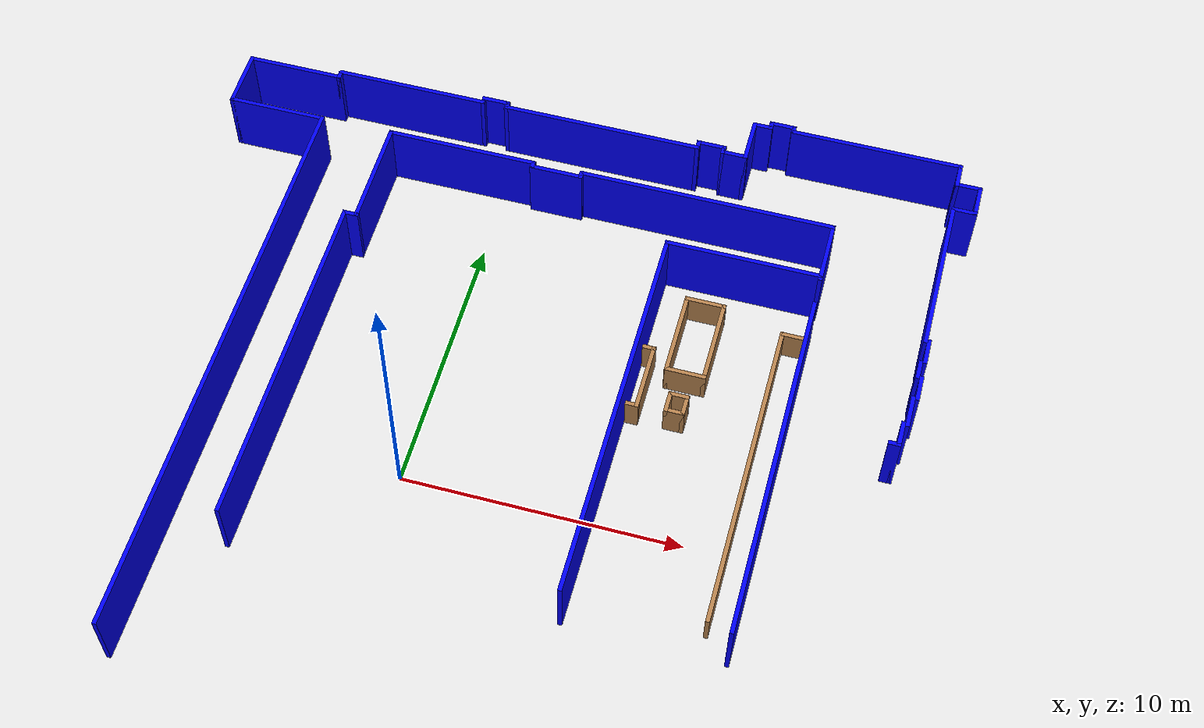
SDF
<sdf version="1.6">
 <model name="A2230_new">
  <pose>3.29262 1.5551 0 0 -0 0</pose>
  <link name="Wall_100">
   <collision name="Wall_100_Collision">
    <geometry><box><size>0.367391 0.15 2.5</size></box></geometry>
    <pose>0 0 1.25 0 -0 0</pose>
   </collision>
   <visual name="Wall_100_Visual">
    <pose>0 0 1.25 0 -0 0</pose>
    <geometry><box><size>0.367391 0.15 2.5</size></box></geometry>
    <material>
     <ambient>0.0 0.0 1.0 1</ambient>
     <diffuse>0.0 0.0 1.0 1</diffuse>
     <specular>0.0 0.0 1.0 1</specular>
    </material>
    <meta><layer>0</layer></meta>
   </visual>
   <pose>5.9153 15.1926 0 0 -0 -1.5708</pose>
  </link>
  <link name="Wall_101">
   <collision name="Wall_101_Collision">
    <geometry><box><size>0.75 0.15 2.5</size></box></geometry>
    <pose>0 0 1.25 0 -0 0</pose>
   </collision>
   <visual name="Wall_101_Visual">
    <pose>0 0 1.25 0 -0 0</pose>
    <geometry><box><size>0.75 0.15 2.5</size></box></geometry>
    <material>
     <ambient>0.0 0.0 1.0 1</ambient>
     <diffuse>0.0 0.0 1.0 1</diffuse>
     <specular>0.0 0.0 1.0 1</specular>
    </material>
    <meta><layer>0</layer></meta>
   </visual>
   <pose>5.6153 15.0839 0 0 -0 3.14159</pose>
  </link>
  <link name="Wall_102">
   <collision name="Wall_102_Collision">
    <geometry><box><size>1.75 0.15 2.5</size></box></geometry>
    <pose>0 0 1.25 0 -0 0</pose>
   </collision>
   <visual name="Wall_102_Visual">
    <pose>0 0 1.25 0 -0 0</pose>
    <geometry><box><size>1.75 0.15 2.5</size></box></geometry>
    <material>
     <ambient>0.0 0.0 1.0 1</ambient>
     <diffuse>0.0 0.0 1.0 1</diffuse>
     <specular>0.0 0.0 1.0 1</specular>
    </material>
    <meta><layer>0</layer></meta>
   </visual>
   <pose>5.3153 14.2839 0 0 -0 -1.5708</pose>
  </link>
  <link name="Wall_103">
   <collision name="Wall_103_Collision">
    <geometry><box><size>1 0.15 2.5</size></box></geometry>
    <pose>0 0 1.25 0 -0 0</pose>
   </collision>
   <visual name="Wall_103_Visual">
    <pose>0 0 1.25 0 -0 0</pose>
    <geometry><box><size>1 0.15 2.5</size></box></geometry>
    <material>
     <ambient>0.0 0.0 1.0 1</ambient>
     <diffuse>0.0 0.0 1.0 1</diffuse>
     <specular>0.0 0.0 1.0 1</specular>
    </material>
    <meta><layer>0</layer></meta>
   </visual>
   <pose>4.8903 13.4839 0 0 -0 3.14159</pose>
  </link>
  <link name="Wall_106">
   <collision name="Wall_106_Collision">
    <geometry><box><size>0.35 0.15 2.5</size></box></geometry>
    <pose>0 0 1.25 0 -0 0</pose>
   </collision>
   <visual name="Wall_106_Visual">
    <pose>0 0 1.25 0 -0 0</pose>
    <geometry><box><size>0.35 0.15 2.5</size></box></geometry>
    <material>
     <ambient>0.0 0.0 1.0 1</ambient>
     <diffuse>0.0 0.0 1.0 1</diffuse>
     <specular>0.0 0.0 1.0 1</specular>
    </material>
    <meta><layer>0</layer></meta>
   </visual>
   <pose>4.4653 13.5839 0 0 -0 1.5708</pose>
  </link>
  <link name="Wall_109">
   <collision name="Wall_109_Collision">
    <geometry><box><size>0.402324 0.15 2.5</size></box></geometry>
    <pose>0 0 1.25 0 -0 0</pose>
   </collision>
   <visual name="Wall_109_Visual">
    <pose>0 0 1.25 0 -0 0</pose>
    <geometry><box><size>0.402324 0.15 2.5</size></box></geometry>
    <material>
     <ambient>0.0 0.0 1.0 1</ambient>
     <diffuse>0.0 0.0 1.0 1</diffuse>
     <specular>0.0 0.0 1.0 1</specular>
    </material>
    <meta><layer>0</layer></meta>
   </visual>
   <pose>3.5066 13.5665 0 0 -0 1.5708</pose>
  </link>
  <link name="Wall_110">
   <collision name="Wall_110_Collision">
    <geometry><box><size>1.09783 0.15 2.5</size></box></geometry>
    <pose>0 0 1.25 0 -0 0</pose>
   </collision>
   <visual name="Wall_110_Visual">
    <pose>0 0 1.25 0 -0 0</pose>
    <geometry><box><size>1.09783 0.15 2.5</size></box></geometry>
    <material>
     <ambient>0.0 0.0 1.0 1</ambient>
     <diffuse>0.0 0.0 1.0 1</diffuse>
     <specular>0.0 0.0 1.0 1</specular>
    </material>
    <meta><layer>0</layer></meta>
   </visual>
   <pose>3.98052 13.6926 0 0 -0 0</pose>
  </link>
  <link name="Wall_112">
   <collision name="Wall_112_Collision">
    <geometry><box><size>1 0.15 2.5</size></box></geometry>
    <pose>0 0 1.25 0 -0 0</pose>
   </collision>
   <visual name="Wall_112_Visual">
    <pose>0 0 1.25 0 -0 0</pose>
    <geometry><box><size>1 0.15 2.5</size></box></geometry>
    <material>
     <ambient>0.0 0.0 1.0 1</ambient>
     <diffuse>0.0 0.0 1.0 1</diffuse>
     <specular>0.0 0.0 1.0 1</specular>
    </material>
    <meta><layer>0</layer></meta>
   </visual>
   <pose>6.3403 15.3013 0 0 -0 0</pose>
  </link>
  <link name="Wall_113">
   <collision name="Wall_113_Collision">
    <geometry><box><size>0.32 0.15 2.5</size></box></geometry>
    <pose>0 0 1.25 0 -0 0</pose>
   </collision>
   <visual name="Wall_113_Visual">
    <pose>0 0 1.25 0 -0 0</pose>
    <geometry><box><size>0.32 0.15 2.5</size></box></geometry>
    <material>
     <ambient>0.0 0.0 1.0 1</ambient>
     <diffuse>0.0 0.0 1.0 1</diffuse>
     <specular>0.0 0.0 1.0 1</specular>
    </material>
    <meta><layer>0</layer></meta>
   </visual>
   <pose>6.7653 15.2163 0 0 -0 -1.5708</pose>
  </link>
  <link name="Wall_115">
   <collision name="Wall_115_Collision">
    <geometry><box><size>6.4 0.15 2.5</size></box></geometry>
    <pose>0 0 1.25 0 -0 0</pose>
   </collision>
   <visual name="Wall_115_Visual">
    <pose>0 0 1.25 0 -0 0</pose>
    <geometry><box><size>6.4 0.15 2.5</size></box></geometry>
    <material>
     <ambient>0.0 0.0 1.0 1</ambient>
     <diffuse>0.0 0.0 1.0 1</diffuse>
     <specular>0.0 0.0 1.0 1</specular>
    </material>
    <meta><layer>0</layer></meta>
   </visual>
   <pose>9.90334 15.11 0 0 -0 3.14159</pose>
  </link>
  <link name="Wall_117">
   <collision name="Wall_117_Collision">
    <geometry><box><size>1 0.15 2.5</size></box></geometry>
    <pose>0 0 1.25 0 -0 0</pose>
   </collision>
   <visual name="Wall_117_Visual">
    <pose>0 0 1.25 0 -0 0</pose>
    <geometry><box><size>1 0.15 2.5</size></box></geometry>
    <material>
     <ambient>0.0 0.0 1.0 1</ambient>
     <diffuse>0.0 0.0 1.0 1</diffuse>
     <specular>0.0 0.0 1.0 1</specular>
    </material>
    <meta><layer>0</layer></meta>
   </visual>
   <pose>13.0283 14.685 0 0 -0 -1.5708</pose>
  </link>
  <link name="Wall_118">
   <collision name="Wall_118_Collision">
    <geometry><box><size>1 0.15 2.5</size></box></geometry>
    <pose>0 0 1.25 0 -0 0</pose>
   </collision>
   <visual name="Wall_118_Visual">
    <pose>0 0 1.25 0 -0 0</pose>
    <geometry><box><size>1 0.15 2.5</size></box></geometry>
    <material>
     <ambient>0.0 0.0 1.0 1</ambient>
     <diffuse>0.0 0.0 1.0 1</diffuse>
     <specular>0.0 0.0 1.0 1</specular>
    </material>
    <meta><layer>0</layer></meta>
   </visual>
   <pose>13.4533 14.26 0 0 -0 0</pose>
  </link>
  <link name="Wall_119">
   <collision name="Wall_119_Collision">
    <geometry><box><size>1.3 0.15 2.5</size></box></geometry>
    <pose>0 0 1.25 0 -0 0</pose>
   </collision>
   <visual name="Wall_119_Visual">
    <pose>0 0 1.25 0 -0 0</pose>
    <geometry><box><size>1.3 0.15 2.5</size></box></geometry>
    <material>
     <ambient>0.0 0.0 1.0 1</ambient>
     <diffuse>0.0 0.0 1.0 1</diffuse>
     <specular>0.0 0.0 1.0 1</specular>
    </material>
    <meta><layer>0</layer></meta>
   </visual>
   <pose>13.8783 13.685 0 0 -0 -1.5708</pose>
  </link>
  <link name="Wall_121">
   <collision name="Wall_121_Collision">
    <geometry><box><size>0.943 0.15 2.5</size></box></geometry>
    <pose>0 0 1.25 0 -0 0</pose>
   </collision>
   <visual name="Wall_121_Visual">
    <pose>0 0 1.25 0 -0 0</pose>
    <geometry><box><size>0.943 0.15 2.5</size></box></geometry>
    <material>
     <ambient>0.0 0.0 1.0 1</ambient>
     <diffuse>0.0 0.0 1.0 1</diffuse>
     <specular>0.0 0.0 1.0 1</specular>
    </material>
    <meta><layer>0</layer></meta>
   </visual>
   <pose>13.4818 13.11 0 0 -0 3.14159</pose>
  </link>
  <link name="Wall_123">
   <collision name="Wall_123_Collision">
    <geometry><box><size>7.5 0.15 2.5</size></box></geometry>
    <pose>0 0 1.25 0 -0 0</pose>
   </collision>
   <visual name="Wall_123_Visual">
    <pose>0 0 1.25 0 -0 0</pose>
    <geometry><box><size>7.5 0.15 2.5</size></box></geometry>
    <material>
     <ambient>0.0 0.0 1.0 1</ambient>
     <diffuse>0.0 0.0 1.0 1</diffuse>
     <specular>0.0 0.0 1.0 1</specular>
    </material>
    <meta><layer>0</layer></meta>
   </visual>
   <pose>-0.168398 13.4405 0 0 -0 3.14159</pose>
  </link>
  <link name="Wall_124">
   <collision name="Wall_124_Collision">
    <geometry><box><size>0.33 0.15 2.5</size></box></geometry>
    <pose>0 0 1.25 0 -0 0</pose>
   </collision>
   <visual name="Wall_124_Visual">
    <pose>0 0 1.25 0 -0 0</pose>
    <geometry><box><size>0.33 0.15 2.5</size></box></geometry>
    <material>
     <ambient>0.0 0.0 1.0 1</ambient>
     <diffuse>0.0 0.0 1.0 1</diffuse>
     <specular>0.0 0.0 1.0 1</specular>
    </material>
    <meta><layer>0</layer></meta>
   </visual>
   <pose>-3.8434 13.5305 0 0 -0 1.5708</pose>
  </link>
  <link name="Wall_127">
   <collision name="Wall_127_Collision">
    <geometry><box><size>5.75 0.15 2.5</size></box></geometry>
    <pose>0 0 1.25 0 -0 0</pose>
   </collision>
   <visual name="Wall_127_Visual">
    <pose>0 0 1.25 0 -0 0</pose>
    <geometry><box><size>5.75 0.15 2.5</size></box></geometry>
    <material>
     <ambient>0.0 0.0 1.0 1</ambient>
     <diffuse>0.0 0.0 1.0 1</diffuse>
     <specular>0.0 0.0 1.0 1</specular>
    </material>
    <meta><layer>0</layer></meta>
   </visual>
   <pose>-7.55427 13.4405 0 0 -0 0</pose>
  </link>
  <link name="Wall_128">
   <collision name="Wall_128_Collision">
    <geometry><box><size>0.341304 0.15 2.5</size></box></geometry>
    <pose>0 0 1.25 0 -0 0</pose>
   </collision>
   <visual name="Wall_128_Visual">
    <pose>0 0 1.25 0 -0 0</pose>
    <geometry><box><size>0.341304 0.15 2.5</size></box></geometry>
    <material>
     <ambient>0.0 0.0 1.0 1</ambient>
     <diffuse>0.0 0.0 1.0 1</diffuse>
     <specular>0.0 0.0 1.0 1</specular>
    </material>
    <meta><layer>0</layer></meta>
   </visual>
   <pose>-4.75427 13.5361 0 0 -0 1.5708</pose>
  </link>
  <link name="Wall_129">
   <collision name="Wall_129_Collision">
    <geometry><box><size>1 0.15 2.5</size></box></geometry>
    <pose>0 0 1.25 0 -0 0</pose>
   </collision>
   <visual name="Wall_129_Visual">
    <pose>0 0 1.25 0 -0 0</pose>
    <geometry><box><size>1 0.15 2.5</size></box></geometry>
    <material>
     <ambient>0.0 0.0 1.0 1</ambient>
     <diffuse>0.0 0.0 1.0 1</diffuse>
     <specular>0.0 0.0 1.0 1</specular>
    </material>
    <meta><layer>0</layer></meta>
   </visual>
   <pose>-4.32927 13.6318 0 0 -0 0</pose>
  </link>
  <link name="Wall_13">
   <collision name="Wall_13_Collision">
    <geometry><box><size>5.65 0.15 2.5</size></box></geometry>
    <pose>0 0 1.25 0 -0 0</pose>
   </collision>
   <visual name="Wall_13_Visual">
    <pose>0 0 1.25 0 -0 0</pose>
    <geometry><box><size>5.65 0.15 2.5</size></box></geometry>
    <material>
     <ambient>0.0 0.0 1.0 1</ambient>
     <diffuse>0.0 0.0 1.0 1</diffuse>
     <specular>0.0 0.0 1.0 1</specular>
    </material>
    <meta><layer>0</layer></meta>
   </visual>
   <pose>-4.87627 11.1295 0 0 -0 0</pose>
  </link>
  <link name="Wall_132">
   <collision name="Wall_132_Collision">
    <geometry><box><size>21.577 0.15 2.5</size></box></geometry>
    <pose>0 0 1.25 0 -0 0</pose>
   </collision>
   <visual name="Wall_132_Visual">
    <pose>0 0 1.25 0 -0 0</pose>
    <geometry><box><size>21.577 0.15 2.5</size></box></geometry>
    <material>
     <ambient>0.0 0.0 1.0 1</ambient>
     <diffuse>0.0 0.0 1.0 1</diffuse>
     <specular>0.0 0.0 1.0 1</specular>
    </material>
    <meta><layer>0</layer></meta>
   </visual>
   <pose>-10.3216 0.385397 0 0 -0 1.5708</pose>
  </link>
  <link name="Wall_134">
   <collision name="Wall_134_Collision">
    <geometry><box><size>2.25 0.15 2.5</size></box></geometry>
    <pose>0 0 1.25 0 -0 0</pose>
   </collision>
   <visual name="Wall_134_Visual">
    <pose>0 0 1.25 0 -0 0</pose>
    <geometry><box><size>2.25 0.15 2.5</size></box></geometry>
    <material>
     <ambient>0.0 0.0 1.0 1</ambient>
     <diffuse>0.0 0.0 1.0 1</diffuse>
     <specular>0.0 0.0 1.0 1</specular>
    </material>
    <meta><layer>0</layer></meta>
   </visual>
   <pose>-13.8783 12.1457 0 0 -0 1.5708</pose>
  </link>
  <link name="Wall_135">
   <collision name="Wall_135_Collision">
    <geometry><box><size>3.65 0.15 2.5</size></box></geometry>
    <pose>0 0 1.25 0 -0 0</pose>
   </collision>
   <visual name="Wall_135_Visual">
    <pose>0 0 1.25 0 -0 0</pose>
    <geometry><box><size>3.65 0.15 2.5</size></box></geometry>
    <material>
     <ambient>0.0 0.0 1.0 1</ambient>
     <diffuse>0.0 0.0 1.0 1</diffuse>
     <specular>0.0 0.0 1.0 1</specular>
    </material>
    <meta><layer>0</layer></meta>
   </visual>
   <pose>-12.1283 13.1957 0 0 -0 0</pose>
  </link>
  <link name="Wall_138">
   <collision name="Wall_138_Collision">
    <geometry><box><size>0.35 0.15 2.5</size></box></geometry>
    <pose>0 0 1.25 0 -0 0</pose>
   </collision>
   <visual name="Wall_138_Visual">
    <pose>0 0 1.25 0 -0 0</pose>
    <geometry><box><size>0.35 0.15 2.5</size></box></geometry>
    <material>
     <ambient>0.0 0.0 1.0 1</ambient>
     <diffuse>0.0 0.0 1.0 1</diffuse>
     <specular>0.0 0.0 1.0 1</specular>
    </material>
    <meta><layer>0</layer></meta>
   </visual>
   <pose>-10.3783 13.2957 0 0 -0 1.5708</pose>
  </link>
  <link name="Wall_141">
   <collision name="Wall_141_Collision">
    <geometry><box><size>0.3 0.15 2.5</size></box></geometry>
    <pose>0 0 1.25 0 -0 0</pose>
   </collision>
   <visual name="Wall_141_Visual">
    <pose>0 0 1.25 0 -0 0</pose>
    <geometry><box><size>0.3 0.15 2.5</size></box></geometry>
    <material>
     <ambient>0.0 0.0 1.0 1</ambient>
     <diffuse>0.0 0.0 1.0 1</diffuse>
     <specular>0.0 0.0 1.0 1</specular>
    </material>
    <meta><layer>0</layer></meta>
   </visual>
   <pose>-2.12627 11.0545 0 0 -0 -1.5708</pose>
  </link>
  <link name="Wall_145">
   <collision name="Wall_145_Collision">
    <geometry><box><size>1.99 0.15 2.5</size></box></geometry>
    <pose>0 0 1.25 0 -0 0</pose>
   </collision>
   <visual name="Wall_145_Visual">
    <pose>0 0 1.25 0 -0 0</pose>
    <geometry><box><size>1.99 0.15 2.5</size></box></geometry>
    <material>
     <ambient>0.0 0.0 1.0 1</ambient>
     <diffuse>0.0 0.0 1.0 1</diffuse>
     <specular>0.0 0.0 1.0 1</specular>
    </material>
    <meta><layer>0</layer></meta>
   </visual>
   <pose>-1.20921 10.9612 0 0 -0 3.14159</pose>
  </link>
  <link name="Wall_147">
   <collision name="Wall_147_Collision">
    <geometry><box><size>0.334 0.15 2.5</size></box></geometry>
    <pose>0 0 1.25 0 -0 0</pose>
   </collision>
   <visual name="Wall_147_Visual">
    <pose>0 0 1.25 0 -0 0</pose>
    <geometry><box><size>0.334 0.15 2.5</size></box></geometry>
    <material>
     <ambient>0.0 0.0 1.0 1</ambient>
     <diffuse>0.0 0.0 1.0 1</diffuse>
     <specular>0.0 0.0 1.0 1</specular>
    </material>
    <meta><layer>0</layer></meta>
   </visual>
   <pose>-0.289215 11.0532 0 0 -0 1.5708</pose>
  </link>
  <link name="Wall_149">
   <collision name="Wall_149_Collision">
    <geometry><box><size>0.6 0.15 2.5</size></box></geometry>
    <pose>0 0 1.25 0 -0 0</pose>
   </collision>
   <visual name="Wall_149_Visual">
    <pose>0 0 1.25 0 -0 0</pose>
    <geometry><box><size>0.6 0.15 2.5</size></box></geometry>
    <material>
     <ambient>0.0 0.0 1.0 1</ambient>
     <diffuse>0.0 0.0 1.0 1</diffuse>
     <specular>0.0 0.0 1.0 1</specular>
    </material>
    <meta><layer>0</layer></meta>
   </visual>
   <pose>-7.84377 7.13786 0 0 -0 0</pose>
  </link>
  <link name="Wall_15">
   <collision name="Wall_15_Collision">
    <geometry><box><size>9.45 0.15 2.5</size></box></geometry>
    <pose>0 0 1.25 0 -0 0</pose>
   </collision>
   <visual name="Wall_15_Visual">
    <pose>0 0 1.25 0 -0 0</pose>
    <geometry><box><size>9.45 0.15 2.5</size></box></geometry>
    <material>
     <ambient>0.0 0.0 1.0 1</ambient>
     <diffuse>0.0 0.0 1.0 1</diffuse>
     <specular>0.0 0.0 1.0 1</specular>
    </material>
    <meta><layer>0</layer></meta>
   </visual>
   <pose>4.40541 11.1419 0 0 -0 0</pose>
  </link>
  <link name="Wall_17">
   <collision name="Wall_17_Collision">
    <geometry><box><size>2.5 0.15 2.5</size></box></geometry>
    <pose>0 0 1.25 0 -0 0</pose>
   </collision>
   <visual name="Wall_17_Visual">
    <pose>0 0 1.25 0 -0 0</pose>
    <geometry><box><size>2.5 0.15 2.5</size></box></geometry>
    <material>
     <ambient>0.0 0.0 1.0 1</ambient>
     <diffuse>0.0 0.0 1.0 1</diffuse>
     <specular>0.0 0.0 1.0 1</specular>
    </material>
    <meta><layer>0</layer></meta>
   </visual>
   <pose>9.05541 9.96689 0 0 -0 -1.5708</pose>
  </link>
  <link name="Wall_189">
   <collision name="Wall_189_Collision">
    <geometry><box><size>14.383 0.15 2.5</size></box></geometry>
    <pose>0 0 1.25 0 -0 0</pose>
   </collision>
   <visual name="Wall_189_Visual">
    <pose>0 0 1.25 0 -0 0</pose>
    <geometry><box><size>14.383 0.15 2.5</size></box></geometry>
    <material>
     <ambient>0.0 0.0 1.0 1</ambient>
     <diffuse>0.0 0.0 1.0 1</diffuse>
     <specular>0.0 0.0 1.0 1</specular>
    </material>
    <meta><layer>0</layer></meta>
   </visual>
   <pose>3.47642 1.79279 0 0 -0 -1.5708</pose>
  </link>
  <link name="Wall_195">
   <collision name="Wall_195_Collision">
    <geometry><box><size>11.687 0.15 1.2</size></box></geometry>
    <pose>0 0 0.6 0 -0 0</pose>
   </collision>
   <visual name="Wall_195_Visual">
    <pose>0 0 0.6 0 -0 0</pose>
    <geometry><box><size>11.687 0.15 1.2</size></box></geometry>
    <material>
     <script><uri>file://media/materials/scripts/gazebo.material</uri><name>Gazebo/Wood</name></script>
     <ambient>1 1 1 1</ambient>
    </material>
    <meta><layer>0</layer></meta>
   </visual>
   <pose>8.18238 1.2574 0 0 -0 1.5708</pose>
  </link>
  <link name="Wall_197">
   <collision name="Wall_197_Collision">
    <geometry><box><size>13.148 0.15 2.5</size></box></geometry>
    <pose>0 0 1.25 0 -0 0</pose>
   </collision>
   <visual name="Wall_197_Visual">
    <pose>0 0 1.25 0 -0 0</pose>
    <geometry><box><size>13.148 0.15 2.5</size></box></geometry>
    <material>
     <ambient>0.0 0.0 1.0 1</ambient>
     <diffuse>0.0 0.0 1.0 1</diffuse>
     <specular>0.0 0.0 1.0 1</specular>
    </material>
    <meta><layer>0</layer></meta>
   </visual>
   <pose>9.07642 1.17529 0 0 -0 1.5708</pose>
  </link>
  <link name="Wall_209">
   <collision name="Wall_209_Collision">
    <geometry><box><size>1 0.15 2.5</size></box></geometry>
    <pose>0 0 1.25 0 -0 0</pose>
   </collision>
   <visual name="Wall_209_Visual">
    <pose>0 0 1.25 0 -0 0</pose>
    <geometry><box><size>1 0.15 2.5</size></box></geometry>
    <material>
     <ambient>0.0 0.0 1.0 1</ambient>
     <diffuse>0.0 0.0 1.0 1</diffuse>
     <specular>0.0 0.0 1.0 1</specular>
    </material>
    <meta><layer>0</layer></meta>
   </visual>
   <pose>13.2053 6.73452 0 0 -0 -1.5708</pose>
  </link>
  <link name="Wall_21">
   <collision name="Wall_21_Collision">
    <geometry><box><size>5.7 0.15 2.5</size></box></geometry>
    <pose>0 0 1.25 0 -0 0</pose>
   </collision>
   <visual name="Wall_21_Visual">
    <pose>0 0 1.25 0 -0 0</pose>
    <geometry><box><size>5.7 0.15 2.5</size></box></geometry>
    <material>
     <ambient>0.0 0.0 1.0 1</ambient>
     <diffuse>0.0 0.0 1.0 1</diffuse>
     <specular>0.0 0.0 1.0 1</specular>
    </material>
    <meta><layer>0</layer></meta>
   </visual>
   <pose>6.25142 8.90929 0 0 -0 0</pose>
  </link>
  <link name="Wall_211">
   <collision name="Wall_211_Collision">
    <geometry><box><size>0.75 0.15 2.5</size></box></geometry>
    <pose>0 0 1.25 0 -0 0</pose>
   </collision>
   <visual name="Wall_211_Visual">
    <pose>0 0 1.25 0 -0 0</pose>
    <geometry><box><size>0.75 0.15 2.5</size></box></geometry>
    <material>
     <ambient>0.0 0.0 1.0 1</ambient>
     <diffuse>0.0 0.0 1.0 1</diffuse>
     <specular>0.0 0.0 1.0 1</specular>
    </material>
    <meta><layer>0</layer></meta>
   </visual>
   <pose>13.0645 5.9343 0 0 -0 -1.5708</pose>
  </link>
  <link name="Wall_213">
   <collision name="Wall_213_Collision">
    <geometry><box><size>1 0.15 2.5</size></box></geometry>
    <pose>0 0 1.25 0 -0 0</pose>
   </collision>
   <visual name="Wall_213_Visual">
    <pose>0 0 1.25 0 -0 0</pose>
    <geometry><box><size>1 0.15 2.5</size></box></geometry>
    <material>
     <ambient>0.0 0.0 1.0 1</ambient>
     <diffuse>0.0 0.0 1.0 1</diffuse>
     <specular>0.0 0.0 1.0 1</specular>
    </material>
    <meta><layer>0</layer></meta>
   </visual>
   <pose>13.2053 5.18577 0 0 -0 -1.5708</pose>
  </link>
  <link name="Wall_215">
   <collision name="Wall_215_Collision">
    <geometry><box><size>1.25 0.15 2.5</size></box></geometry>
    <pose>0 0 1.25 0 -0 0</pose>
   </collision>
   <visual name="Wall_215_Visual">
    <pose>0 0 1.25 0 -0 0</pose>
    <geometry><box><size>1.25 0.15 2.5</size></box></geometry>
    <material>
     <ambient>0.0 0.0 1.0 1</ambient>
     <diffuse>0.0 0.0 1.0 1</diffuse>
     <specular>0.0 0.0 1.0 1</specular>
    </material>
    <meta><layer>0</layer></meta>
   </visual>
   <pose>13.0645 4.19589 0 0 -0 -1.5708</pose>
  </link>
  <link name="Wall_218">
   <collision name="Wall_218_Collision">
    <geometry><box><size>1 0.15 2.5</size></box></geometry>
    <pose>0 0 1.25 0 -0 0</pose>
   </collision>
   <visual name="Wall_218_Visual">
    <pose>0 0 1.25 0 -0 0</pose>
    <geometry><box><size>1 0.15 2.5</size></box></geometry>
    <material>
     <ambient>0.0 0.0 1.0 1</ambient>
     <diffuse>0.0 0.0 1.0 1</diffuse>
     <specular>0.0 0.0 1.0 1</specular>
    </material>
    <meta><layer>0</layer></meta>
   </visual>
   <pose>12.9237 3.23476 0 0 -0 -1.5708</pose>
  </link>
  <link name="Wall_219">
   <collision name="Wall_219_Collision">
    <geometry><box><size>0.441 0.15 2.5</size></box></geometry>
    <pose>0 0 1.25 0 -0 0</pose>
   </collision>
   <visual name="Wall_219_Visual">
    <pose>0 0 1.25 0 -0 0</pose>
    <geometry><box><size>0.441 0.15 2.5</size></box></geometry>
    <material>
     <ambient>0.0 0.0 1.0 1</ambient>
     <diffuse>0.0 0.0 1.0 1</diffuse>
     <specular>0.0 0.0 1.0 1</specular>
    </material>
    <meta><layer>0</layer></meta>
   </visual>
   <pose>12.7782 2.80976 0 0 -0 3.14159</pose>
  </link>
  <link name="Wall_222">
   <collision name="Wall_222_Collision">
    <geometry><box><size>0.6 0.15 1.2</size></box></geometry>
    <pose>0 0 0.6 0 -0 0</pose>
   </collision>
   <visual name="Wall_222_Visual">
    <pose>0 0 0.6 0 -0 0</pose>
    <geometry><box><size>0.6 0.15 1.2</size></box></geometry>
    <material>
     <script><uri>file://media/materials/scripts/gazebo.material</uri><name>Gazebo/Wood</name></script>
     <ambient>1 1 1 1</ambient>
    </material>
    <meta><layer>0</layer></meta>
   </visual>
   <pose>3.72638 5.2149 0 0 -0 0</pose>
  </link>
  <link name="Wall_224">
   <collision name="Wall_224_Collision">
    <geometry><box><size>2.582 0.15 1.2</size></box></geometry>
    <pose>0 0 0.6 0 -0 0</pose>
   </collision>
   <visual name="Wall_224_Visual">
    <pose>0 0 0.6 0 -0 0</pose>
    <geometry><box><size>2.582 0.15 1.2</size></box></geometry>
    <material>
     <script><uri>file://media/materials/scripts/gazebo.material</uri><name>Gazebo/Wood</name></script>
     <ambient>1 1 1 1</ambient>
    </material>
    <meta><layer>0</layer></meta>
   </visual>
   <pose>3.95138 3.9989 0 0 -0 -1.5708</pose>
  </link>
  <link name="Wall_226">
   <collision name="Wall_226_Collision">
    <geometry><box><size>0.6 0.15 1.2</size></box></geometry>
    <pose>0 0 0.6 0 -0 0</pose>
   </collision>
   <visual name="Wall_226_Visual">
    <pose>0 0 0.6 0 -0 0</pose>
    <geometry><box><size>0.6 0.15 1.2</size></box></geometry>
    <material>
     <script><uri>file://media/materials/scripts/gazebo.material</uri><name>Gazebo/Wood</name></script>
     <ambient>1 1 1 1</ambient>
    </material>
    <meta><layer>0</layer></meta>
   </visual>
   <pose>3.72638 2.7829 0 0 -0 3.14159</pose>
  </link>
  <link name="Wall_29">
   <collision name="Wall_29_Collision">
    <geometry><box><size>0.919273 0.15 1.2</size></box></geometry>
    <pose>0 0 0.6 0 -0 0</pose>
   </collision>
   <visual name="Wall_29_Visual">
    <pose>0 0 0.6 0 -0 0</pose>
    <geometry><box><size>0.919273 0.15 1.2</size></box></geometry>
    <material>
     <script><uri>file://media/materials/scripts/gazebo.material</uri><name>Gazebo/Wood</name></script>
     <ambient>1 1 1 1</ambient>
    </material>
    <meta><layer>0</layer></meta>
   </visual>
   <pose>8.62288 7.0189 0 0 -0 3.14159</pose>
  </link>
  <link name="Wall_36">
   <collision name="Wall_36_Collision">
    <geometry><box><size>3.25 0.15 1.2</size></box></geometry>
    <pose>0 0 0.6 0 -0 0</pose>
   </collision>
   <visual name="Wall_36_Visual">
    <pose>0 0 0.6 0 -0 0</pose>
    <geometry><box><size>3.25 0.15 1.2</size></box></geometry>
    <material>
     <script><uri>file://media/materials/scripts/gazebo.material</uri><name>Gazebo/Wood</name></script>
     <ambient>1 1 1 1</ambient>
    </material>
    <meta><layer>0</layer></meta>
   </visual>
   <pose>4.58238 6.0719 0 0 -0 -1.5708</pose>
  </link>
  <link name="Wall_37">
   <collision name="Wall_37_Collision">
    <geometry><box><size>1.5 0.15 1.2</size></box></geometry>
    <pose>0 0 0.6 0 -0 0</pose>
   </collision>
   <visual name="Wall_37_Visual">
    <pose>0 0 0.6 0 -0 0</pose>
    <geometry><box><size>1.5 0.15 1.2</size></box></geometry>
    <material>
     <script><uri>file://media/materials/scripts/gazebo.material</uri><name>Gazebo/Wood</name></script>
     <ambient>1 1 1 1</ambient>
    </material>
    <meta><layer>0</layer></meta>
   </visual>
   <pose>5.25738 4.5219 0 0 -0 0</pose>
  </link>
  <link name="Wall_38">
   <collision name="Wall_38_Collision">
    <geometry><box><size>3.25 0.15 1.2</size></box></geometry>
    <pose>0 0 0.6 0 -0 0</pose>
   </collision>
   <visual name="Wall_38_Visual">
    <pose>0 0 0.6 0 -0 0</pose>
    <geometry><box><size>3.25 0.15 1.2</size></box></geometry>
    <material>
     <script><uri>file://media/materials/scripts/gazebo.material</uri><name>Gazebo/Wood</name></script>
     <ambient>1 1 1 1</ambient>
    </material>
    <meta><layer>0</layer></meta>
   </visual>
   <pose>5.93238 6.0719 0 0 -0 1.5708</pose>
  </link>
  <link name="Wall_39">
   <collision name="Wall_39_Collision">
    <geometry><box><size>1.5 0.15 1.2</size></box></geometry>
    <pose>0 0 0.6 0 -0 0</pose>
   </collision>
   <visual name="Wall_39_Visual">
    <pose>0 0 0.6 0 -0 0</pose>
    <geometry><box><size>1.5 0.15 1.2</size></box></geometry>
    <material>
     <script><uri>file://media/materials/scripts/gazebo.material</uri><name>Gazebo/Wood</name></script>
     <ambient>1 1 1 1</ambient>
    </material>
    <meta><layer>0</layer></meta>
   </visual>
   <pose>5.25738 7.6219 0 0 -0 3.14159</pose>
  </link>
  <link name="Wall_41">
   <collision name="Wall_41_Collision">
    <geometry><box><size>0.83 0.15 1.2</size></box></geometry>
    <pose>0 0 0.6 0 -0 0</pose>
   </collision>
   <visual name="Wall_41_Visual">
    <pose>0 0 0.6 0 -0 0</pose>
    <geometry><box><size>0.83 0.15 1.2</size></box></geometry>
    <material>
     <script><uri>file://media/materials/scripts/gazebo.material</uri><name>Gazebo/Wood</name></script>
     <ambient>1 1 1 1</ambient>
    </material>
    <meta><layer>0</layer></meta>
   </visual>
   <pose>4.96438 3.2189 0 0 -0 -1.5708</pose>
  </link>
  <link name="Wall_43">
   <collision name="Wall_43_Collision">
    <geometry><box><size>0.75 0.15 1.2</size></box></geometry>
    <pose>0 0 0.6 0 -0 0</pose>
   </collision>
   <visual name="Wall_43_Visual">
    <pose>0 0 0.6 0 -0 0</pose>
    <geometry><box><size>0.75 0.15 1.2</size></box></geometry>
    <material>
     <script><uri>file://media/materials/scripts/gazebo.material</uri><name>Gazebo/Wood</name></script>
     <ambient>1 1 1 1</ambient>
    </material>
    <meta><layer>0</layer></meta>
   </visual>
   <pose>5.26438 2.8789 0 0 -0 0</pose>
  </link>
  <link name="Wall_44">
   <collision name="Wall_44_Collision">
    <geometry><box><size>0.83 0.15 1.2</size></box></geometry>
    <pose>0 0 0.6 0 -0 0</pose>
   </collision>
   <visual name="Wall_44_Visual">
    <pose>0 0 0.6 0 -0 0</pose>
    <geometry><box><size>0.83 0.15 1.2</size></box></geometry>
    <material>
     <script><uri>file://media/materials/scripts/gazebo.material</uri><name>Gazebo/Wood</name></script>
     <ambient>1 1 1 1</ambient>
    </material>
    <meta><layer>0</layer></meta>
   </visual>
   <pose>5.56438 3.2189 0 0 -0 1.5708</pose>
  </link>
  <link name="Wall_46">
   <collision name="Wall_46_Collision">
    <geometry><box><size>0.75 0.15 1.2</size></box></geometry>
    <pose>0 0 0.6 0 -0 0</pose>
   </collision>
   <visual name="Wall_46_Visual">
    <pose>0 0 0.6 0 -0 0</pose>
    <geometry><box><size>0.75 0.15 1.2</size></box></geometry>
    <material>
     <script><uri>file://media/materials/scripts/gazebo.material</uri><name>Gazebo/Wood</name></script>
     <ambient>1 1 1 1</ambient>
    </material>
    <meta><layer>0</layer></meta>
   </visual>
   <pose>5.26438 3.5589 0 0 -0 3.14159</pose>
  </link>
  <link name="Wall_50">
   <collision name="Wall_50_Collision">
    <geometry><box><size>3.7 0.15 2.5</size></box></geometry>
    <pose>0 0 1.25 0 -0 0</pose>
   </collision>
   <visual name="Wall_50_Visual">
    <pose>0 0 1.25 0 -0 0</pose>
    <geometry><box><size>3.7 0.15 2.5</size></box></geometry>
    <material>
     <ambient>0.0 0.0 1.0 1</ambient>
     <diffuse>0.0 0.0 1.0 1</diffuse>
     <specular>0.0 0.0 1.0 1</specular>
    </material>
    <meta><layer>0</layer></meta>
   </visual>
   <pose>-12.1033 11.0957 0 0 -0 0</pose>
  </link>
  <link name="Wall_7">
   <collision name="Wall_7_Collision">
    <geometry><box><size>12.8 0.15 2.5</size></box></geometry>
    <pose>0 0 1.25 0 -0 0</pose>
   </collision>
   <visual name="Wall_7_Visual">
    <pose>0 0 1.25 0 -0 0</pose>
    <geometry><box><size>12.8 0.15 2.5</size></box></geometry>
    <material>
     <ambient>0.0 0.0 1.0 1</ambient>
     <diffuse>0.0 0.0 1.0 1</diffuse>
     <specular>0.0 0.0 1.0 1</specular>
    </material>
    <meta><layer>0</layer></meta>
   </visual>
   <pose>-8.06877 0.812856 0 0 -0 1.5708</pose>
  </link>
  <link name="Wall_9">
   <collision name="Wall_9_Collision">
    <geometry><box><size>4.1 0.15 2.5</size></box></geometry>
    <pose>0 0 1.25 0 -0 0</pose>
   </collision>
   <visual name="Wall_9_Visual">
    <pose>0 0 1.25 0 -0 0</pose>
    <geometry><box><size>4.1 0.15 2.5</size></box></geometry>
    <material>
     <ambient>0.0 0.0 1.0 1</ambient>
     <diffuse>0.0 0.0 1.0 1</diffuse>
     <specular>0.0 0.0 1.0 1</specular>
    </material>
    <meta><layer>0</layer></meta>
   </visual>
   <pose>-7.62627 9.15452 0 0 -0 1.5708</pose>
  </link>
  <link name="Wall_94">
   <collision name="Wall_94_Collision">
    <geometry><box><size>6.059 0.15 2.5</size></box></geometry>
    <pose>0 0 1.25 0 -0 0</pose>
   </collision>
   <visual name="Wall_94_Visual">
    <pose>0 0 1.25 0 -0 0</pose>
    <geometry><box><size>6.059 0.15 2.5</size></box></geometry>
    <material>
     <ambient>0.0 0.0 1.0 1</ambient>
     <diffuse>0.0 0.0 1.0 1</diffuse>
     <specular>0.0 0.0 1.0 1</specular>
    </material>
    <meta><layer>0</layer></meta>
   </visual>
   <pose>13.0791 10.1119 0 0 -0 1.5708</pose>
  </link>
  <static>1</static>
 </model>
</sdf>
